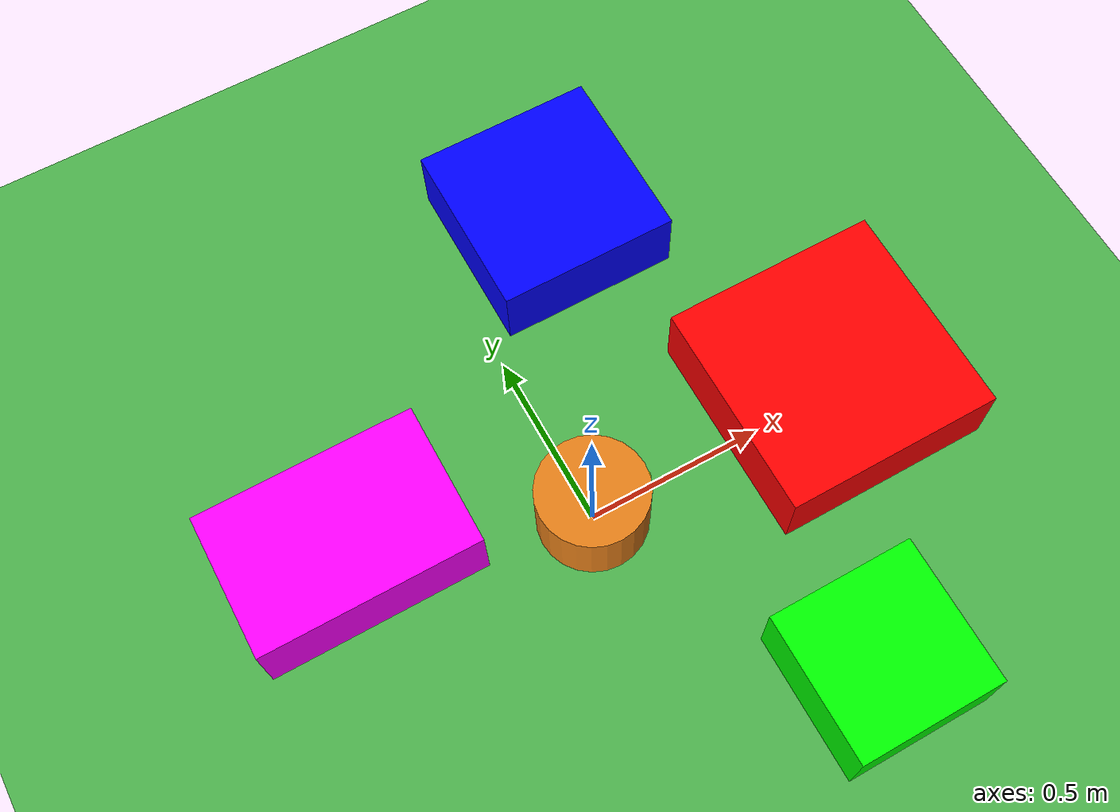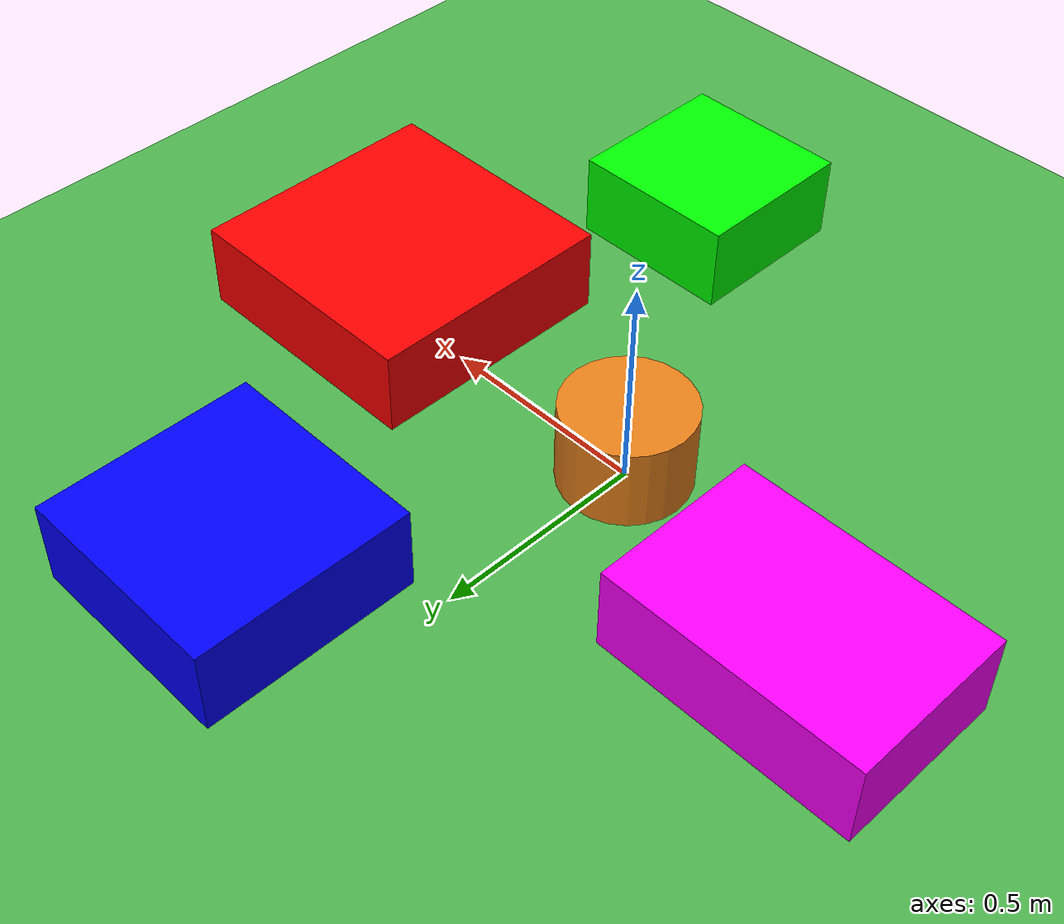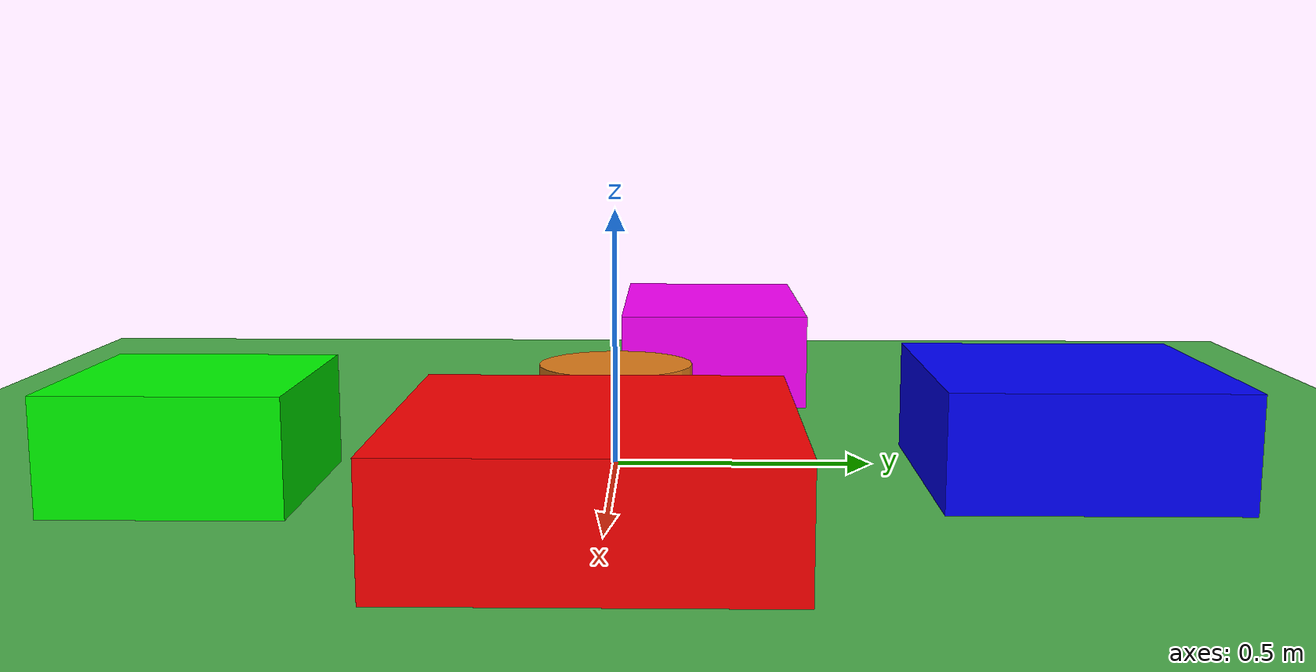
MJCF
<mujoco>
  <compiler autolimits="true"/>

  <asset>
    <!-- 地面棋盘格 -->
    <texture name="grid" type="2d" builtin="checker"
             width="512" height="512"
             rgb1=".1 .2 .3" rgb2=".2 .3 .4"/>
    <material name="grid" texture="grid" texrepeat="8 8" texuniform="true"/>

    <texture name="skybox" type="skybox"
             builtin="gradient"
             width="512" height="512"
             rgb1="0.4 0.6 0.8"
             rgb2="0.1 0.2 0.3"/>
  </asset>

  <default>
    <geom conaffinity="1" contype="1" condim="3" rgba="0.8 0.2 0.2 1"/>
    <joint damping="0.1"/>
  </default>

  <worldbody>
    <geom name="floor" type="plane" size="5 5 0.1"
          rgba="0.3 0.7 0.3 1" material="grid"/>

    <!-- 橙色圆柱体机器人 -->
    <body name="robot" pos="0 0 0.1">
      <joint name="tx" type="slide" axis="1 0 0"/>
      <joint name="ty" type="slide" axis="0 1 0"/>
      <joint name="rz" type="hinge" axis="0 0 1"/>

      <geom name="robot_body" type="cylinder"
            size="0.15 0.1"
            rgba="0.9 0.5 0.1 1"/>

      <site name="robot_front"
            pos="0.15 0 0"
            size="0.02"
            rgba="1 1 0 1"/>
    </body>

    <!-- 障碍物1 红色 -->
    <body name="obs_test" pos="0.7 0 0.15">
      <geom type="box" size="0.3 0.3 0.1" rgba="1 0 0 1"/>
    </body>
    <!-- 障碍物2 蓝色 -->
    <body name="obs_2" pos="0.3 0.8 0.15">
      <geom type="box" size="0.25 0.25 0.1" rgba="0 0 1 1"/>
    </body>
    <!-- 障碍物3 绿色 -->
    <body name="obs_3" pos="0.4 -0.7 0.15">
      <geom type="box" size="0.2 0.2 0.1" rgba="0 1 0 1"/>
    </body>
    <!-- 障碍物4 紫色 -->
    <body name="obs_4" pos="-0.6 0.2 0.15">
      <geom type="box" size="0.3 0.2 0.1" rgba="1 0 1 1"/>
    </body>

  </worldbody>

  <!-- 速度控制器 -->
  <actuator>
    <velocity name="vx" joint="tx" ctrlrange="-1 1" kv="200"/>
    <velocity name="vy" joint="ty" ctrlrange="-1 1" kv="50"/>
    <velocity name="wz" joint="rz" ctrlrange="-2 2" kv="50"/>
  </actuator>
</mujoco>
